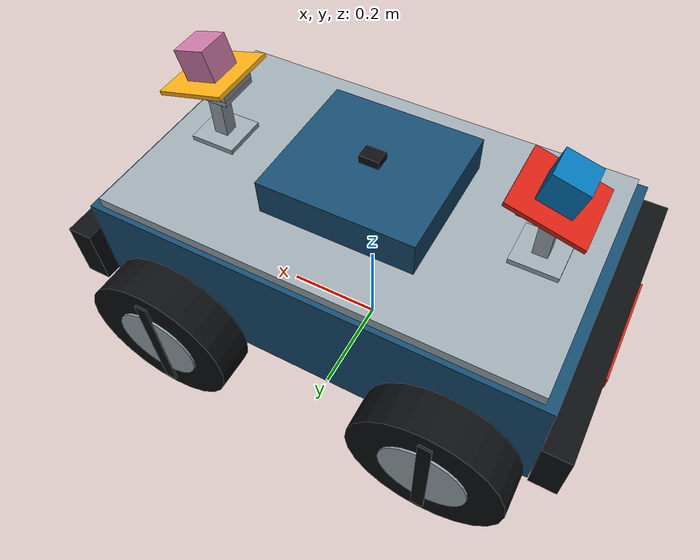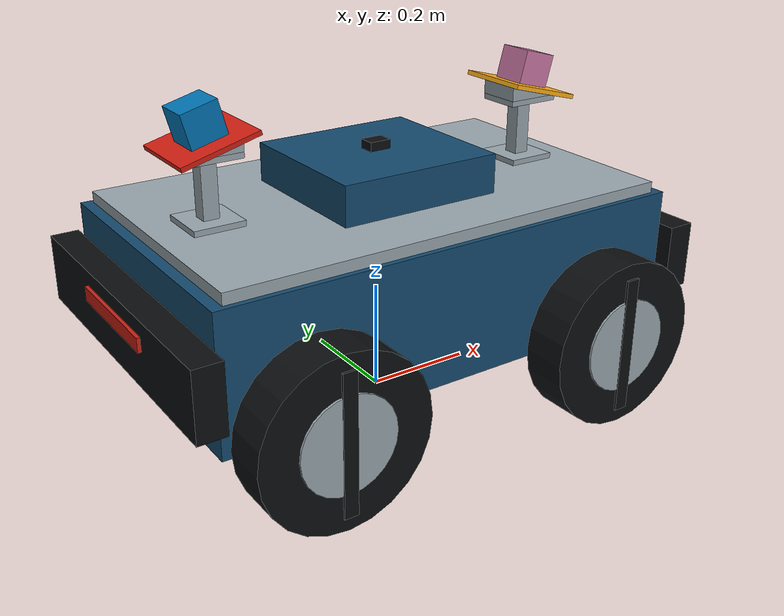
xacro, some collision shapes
<?xml version="1.0"?>
<robot name="dual_mid360" xmlns:xacro="http://www.ros.org/wiki/xacro">
  <!-- 独立 description：只有机械结构，不包含仿真插件。 -->
  <xacro:property name="radius" value="${0.15}"/>
  <xacro:property name="track" value="${0.62}"/>
  <xacro:property name="width" value="${0.08}"/>
  <xacro:property name="wheelbase" value="${0.56}"/>
  <material name="body_blue"><color rgba="0.08 0.29 0.43 1"/></material>
  <material name="rubber"><color rgba="0.045 0.052 0.06 1"/></material>
  <material name="metal"><color rgba="0.60 0.65 0.68 1"/></material>
  <material name="lidar_white"><color rgba="0.90 0.91 0.88 1"/></material>
  <material name="front_marker"><color rgba="1.0 0.68 0.08 1"/></material>
  <material name="rear_marker"><color rgba="0.82 0.12 0.07 1"/></material>

  <!-- 地面参考原点；车身几何抬高，而不是把 root 抬高。 -->
  <link name="base_link"/>
  <xacro:macro name="box_part" params="name parent xyz size material mass:=0.1 rpy:='0 0 0'">
    <link name="${name}">
      <visual><geometry><box size="${size}"/></geometry><material name="${material}"/></visual>
      <collision><geometry><box size="${size}"/></geometry></collision>
      <xacro:property name="s" value="${[float(v) for v in size.split()]}"/>
      <inertial><mass value="${mass}"/><inertia ixx="${mass*(s[1]**2+s[2]**2)/12}" ixy="0" ixz="0"
        iyy="${mass*(s[0]**2+s[2]**2)/12}" iyz="0" izz="${mass*(s[0]**2+s[1]**2)/12}"/></inertial>
    </link>
    <joint name="${name}_joint" type="fixed"><parent link="${parent}"/><child link="${name}"/><origin xyz="${xyz}" rpy="${rpy}"/></joint>
  </xacro:macro>
  <xacro:box_part name="chassis_link" parent="base_link" xyz="0 0 0.25" size="0.88 0.52 0.24" material="body_blue" mass="22"/>
  <xacro:box_part name="deck_link" parent="base_link" xyz="0 0 0.38" size="0.84 0.50 0.02" material="metal" mass="2"/>
  <xacro:box_part name="front_bumper" parent="base_link" xyz="0.465 0 0.25" size="0.05 0.58 0.12" material="rubber"/>
  <xacro:box_part name="rear_bumper" parent="base_link" xyz="-0.465 0 0.25" size="0.05 0.58 0.12" material="rubber"/>
  <xacro:box_part name="front_lamp" parent="front_bumper" xyz="0.028 0 0.02" size="0.006 0.22 0.025" material="lidar_white"/>
  <xacro:box_part name="rear_lamp" parent="rear_bumper" xyz="-0.028 0 0.02" size="0.006 0.22 0.025" material="rear_marker"/>
  <xacro:box_part name="electronics_link" parent="base_link" xyz="0 0 0.425" size="0.30 0.28 0.07" material="body_blue" mass="2"/>
  <xacro:box_part name="imu_link" parent="electronics_link" xyz="0 0 0.043" size="0.04 0.03 0.016" material="rubber"/>

  <xacro:macro name="wheel" params="prefix x side">
    <!-- 轮轴跨过车身与轮胎间隙；圆柱本地 z 轴旋转到 +y。 -->
    <link name="${prefix}_axle">
      <visual><origin rpy="${-pi/2} 0 0"/><geometry><cylinder radius="0.025" length="${track/2-0.23}"/></geometry><material name="metal"/></visual>
      <collision><origin rpy="${-pi/2} 0 0"/><geometry><cylinder radius="0.025" length="${track/2-0.23}"/></geometry></collision>
    </link>
    <joint name="${prefix}_axle_joint" type="fixed"><parent link="base_link"/><child link="${prefix}_axle"/>
      <origin xyz="${x} ${side*(track/2+0.23)/2} ${radius}"/></joint>
    <link name="${prefix}_wheel_link">
      <visual><origin rpy="${-pi/2} 0 0"/><geometry><cylinder radius="${radius}" length="${width}"/></geometry><material name="rubber"/></visual>
      <collision><origin rpy="${-pi/2} 0 0"/><geometry><cylinder radius="${radius}" length="${width}"/></geometry></collision>
      <visual><origin xyz="0 ${side*(width/2+0.002)} 0" rpy="${-pi/2} 0 0"/>
        <geometry><cylinder radius="${radius*0.56}" length="0.004"/></geometry><material name="metal"/></visual>
      <!-- 侧面胎纹让转动可见，不改变接触半径。 -->
      <visual><origin xyz="0 ${side*(width/2+0.004)} 0"/><geometry><box size="0.025 0.004 ${radius*1.65}"/></geometry><material name="rubber"/></visual>
      <inertial><mass value="1.5"/><inertia ixx="${1.5*(3*radius**2+width**2)/12}" ixy="0" ixz="0"
        iyy="${1.5*radius**2/2}" iyz="0" izz="${1.5*(3*radius**2+width**2)/12}"/></inertial>
    </link>
    <joint name="${prefix}_wheel_joint" type="continuous"><parent link="base_link"/><child link="${prefix}_wheel_link"/>
      <origin xyz="${x} ${side*track/2} ${radius}"/><axis xyz="0 1 0"/><limit effort="30" velocity="10"/></joint>
  </xacro:macro>
  <xacro:wheel prefix="front_left" x="${wheelbase/2}" side="${1}"/>
  <xacro:wheel prefix="front_right" x="${wheelbase/2}" side="${-1}"/>
  <xacro:wheel prefix="rear_left" x="${-wheelbase/2}" side="${1}"/>
  <xacro:wheel prefix="rear_right" x="${-wheelbase/2}" side="${-1}"/>

  <xacro:macro name="mid360_mount" params="prefix x yaw marker">
    <!-- 安装关系只在机械模型内定义；仿真与 RSP 从展开后的 URDF 关节链读取位姿。 -->
    <xacro:property name="pitch" value="${15*pi/180}"/>
    <xacro:property name="wedge_height" value="${0.10*fabs(tan(pitch))}"/>
    <!-- 向外的局部 +x 轴俯倾；后支架整体 yaw=pi，所以后雷达向车尾俯倾。 -->
    <xacro:box_part name="${prefix}_mount_foot" parent="base_link" xyz="${x} 0 0.395" rpy="0 0 ${yaw}"
      size="0.09 0.09 0.01" material="metal"/>
    <xacro:box_part name="${prefix}_mount_post" parent="${prefix}_mount_foot" xyz="0 0 0.055" size="0.028 0.028 0.10" material="metal"/>
    <xacro:box_part name="${prefix}_mount_adapter" parent="${prefix}_mount_post" xyz="0 0 0.055" size="0.10 0.08 0.01" material="metal"/>
    <!-- 楔块下表面水平、上表面与倾斜安装板共面；缩放只用于自制楔块。 -->
    <link name="${prefix}_mount_wedge">
      <xacro:if value="${wedge_height > 1e-9}">
        <visual><origin rpy="0 0 ${pi if pitch &lt; 0 else 0}"/>
          <geometry><mesh filename="package://dual_mid360_description/meshes/unit_wedge.stl" scale="0.10 0.08 ${wedge_height}"/></geometry><material name="metal"/></visual>
        <collision><origin rpy="0 0 ${pi if pitch &lt; 0 else 0}"/>
          <geometry><mesh filename="package://dual_mid360_description/meshes/unit_wedge.stl" scale="0.10 0.08 ${wedge_height}"/></geometry></collision>
      </xacro:if>
    </link>
    <joint name="${prefix}_mount_wedge_joint" type="fixed"><parent link="${prefix}_mount_adapter"/><child link="${prefix}_mount_wedge"/><origin xyz="0 0 0.005"/></joint>
    <xacro:box_part name="${prefix}_mount_plate" parent="${prefix}_mount_wedge"
      xyz="${0.004*sin(pitch)} 0 ${wedge_height/2+0.004*cos(pitch)}" rpy="0 ${pitch} 0"
      size="0.14 0.14 0.008" material="${marker}"/>
    <!-- STEP 原形网格已转为米制扫描坐标；O 距安装底面 47 mm，接插件在 -X。 -->
    <link name="${prefix}_mid360_link">
      <visual><geometry><mesh filename="package://dual_mid360_description/meshes/livox_mid360.dae"/></geometry></visual>
      <!-- 碰撞用保守包围体；视觉与射线仍读取真实 CAD 网格。 -->
      <collision><origin xyz="0 0 -0.017"/><geometry><box size="0.065 0.065 0.060"/></geometry></collision>
      <collision><origin xyz="-0.0365 0 -0.0327" rpy="0 ${pi/2} 0"/>
        <geometry><cylinder radius="0.008" length="0.008"/></geometry></collision>
      <inertial><origin xyz="0 0 -0.017"/><mass value="0.265"/>
        <inertia ixx="0.000173" ixy="0" ixz="0" iyy="0.000173" iyz="0" izz="0.000187"/></inertial>
    </link>
    <joint name="${prefix}_mid360_joint" type="fixed"><parent link="${prefix}_mount_plate"/><child link="${prefix}_mid360_link"/>
      <origin xyz="0 0 0.051"/></joint>
  </xacro:macro>
  <xacro:mid360_mount prefix="front" x="0.32" yaw="0" marker="front_marker"/>
  <xacro:mid360_mount prefix="rear" x="-0.32" yaw="${pi}" marker="rear_marker"/>
</robot>
